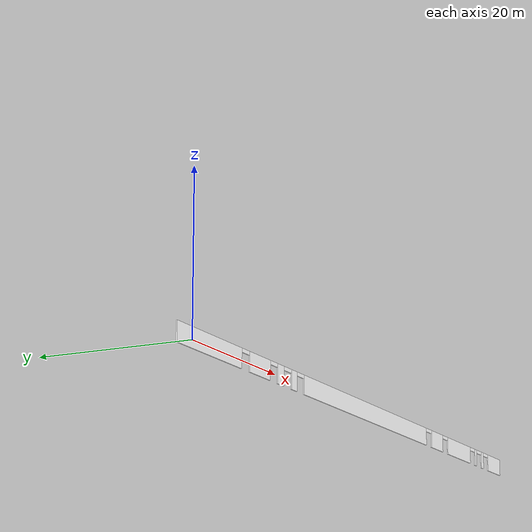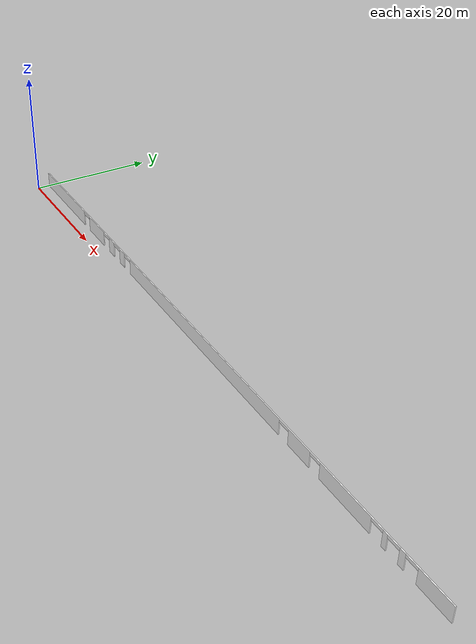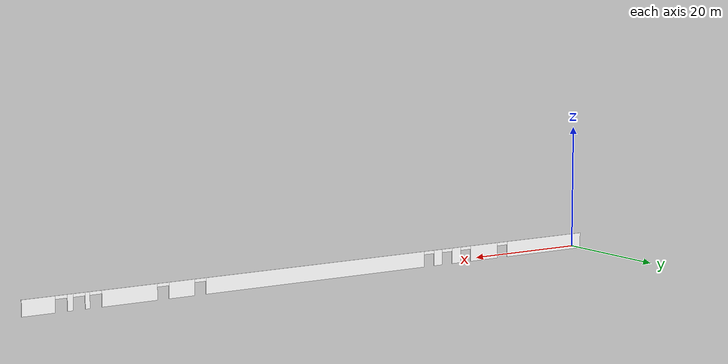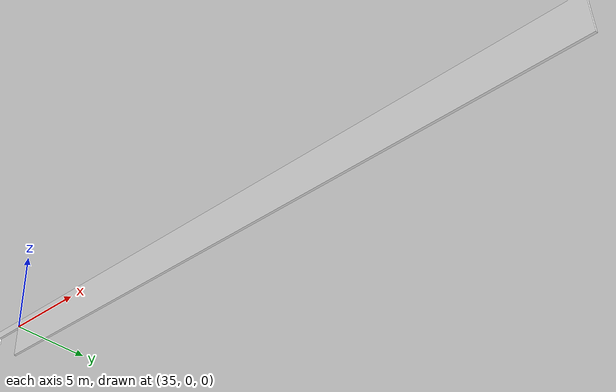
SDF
<?xml version='1.0'?>
    <sdf version='1.6'>
  <model name='wall_with_door'>
    <pose frame=''>50  2  0 0 -0 0</pose>
    <link name='Wall_2'>
      <pose frame=''>0 0 0 0 -0 0</pose>
 <visual name='Wall_2_Visual_0'>
 <pose frame=''> -42.3645  0 1.25 0 -0 0</pose>
 <geometry>
 <box>
 <size> 15.271  0.15 2.5</size>
 </box>
 </geometry>
 <material>
 <script>
          <uri>model://floor/materials/scripts</uri>
         <uri>model://floor/materials/textures</uri>
 <name>floor</name>
 </script>
 <ambient>1 1 1 1</ambient>
 </material>
 <meta>
 <layer>0</layer>
 </meta>
 </visual>
 <collision name='Wall_2_Collision_0'>
 <geometry>
 <box>
  <size> 15.271  0.15 2.5</size>
 </box>
 </geometry>
 <pose frame=''> -42.3645  0 1.25 0 -0 0</pose>
 </collision>
<visual name='Wall_2_Visual_1'>
 <pose frame=''> -30.0405  0 1.25 0 -0 0</pose>
 <geometry>
 <box>
 <size> 5.377  0.15 2.5</size>
 </box>
 </geometry>
 <material>
 <script>
          <uri>model://floor/materials/scripts</uri>
         <uri>model://floor/materials/textures</uri>
 <name>floor</name>
 </script>
 <ambient>1 1 1 1</ambient>
 </material>
 <meta>
 <layer>0</layer>
 </meta>
 </visual>
 <collision name='Wall_2_Collision_1'>
 <geometry>
 <box>
  <size> 5.377  0.15 2.5</size>
 </box>
 </geometry>
 <pose frame=''> -30.0405  0 1.25 0 -0 0</pose>
 </collision>
<visual name='Wall_2_Visual_2'>
 <pose frame=''> -24.472  0 1.25 0 -0 0</pose>
 <geometry>
 <box>
 <size> 1.76  0.15 2.5</size>
 </box>
 </geometry>
 <material>
 <script>
          <uri>model://floor/materials/scripts</uri>
         <uri>model://floor/materials/textures</uri>
 <name>floor</name>
 </script>
 <ambient>1 1 1 1</ambient>
 </material>
 <meta>
 <layer>0</layer>
 </meta>
 </visual>
 <collision name='Wall_2_Collision_2'>
 <geometry>
 <box>
  <size> 1.76  0.15 2.5</size>
 </box>
 </geometry>
 <pose frame=''> -24.472  0 1.25 0 -0 0</pose>
 </collision>
<visual name='Wall_2_Visual_3'>
 <pose frame=''> -20.8175  0 1.25 0 -0 0</pose>
 <geometry>
 <box>
 <size> 1.549  0.15 2.5</size>
 </box>
 </geometry>
 <material>
 <script>
          <uri>model://floor/materials/scripts</uri>
         <uri>model://floor/materials/textures</uri>
 <name>floor</name>

 </script>
 <ambient>1 1 1 1</ambient>
 </material>
 <meta>
 <layer>0</layer>
 </meta>
 </visual>
 <collision name='Wall_2_Collision_3'>
 <geometry>
 <box>
  <size> 1.549  0.15 2.5</size>
 </box>
 </geometry>
 <pose frame=''> -20.8175  0 1.25 0 -0 0</pose>
 </collision>
<visual name='Wall_2_Visual_4'>
 <pose frame=''> 2.1425  0 1.25 0 -0 0</pose>
 <geometry>
 <box>
 <size> 40.371  0.15 2.5</size>
 </box>
 </geometry>
 <material>
 <script>
          <uri>model://floor/materials/scripts</uri>
         <uri>model://floor/materials/textures</uri>
 <name>floor</name>
 </script>
 <ambient>1 1 1 1</ambient>
 </material>
 <meta>
 <layer>0</layer>
 </meta>
 </visual>
 <collision name='Wall_2_Collision_4'>
 <geometry>
 <box>
  <size> 40.371  0.15 2.5</size>
 </box>
 </geometry>
 <pose frame=''> 2.1425  0 1.25 0 -0 0</pose>
 </collision>
<visual name='Wall_2_Visual_5'>
 <pose frame=''> 26.519  0 1.25 0 -0 0</pose>
 <geometry>
 <box>
 <size> 4.382  0.15 2.5</size>
 </box>
 </geometry>
 <material>
 <script>
          <uri>model://floor/materials/scripts</uri>
         <uri>model://floor/materials/textures</uri>
 <name>floor</name>
 </script>
 <ambient>1 1 1 1</ambient>
 </material>
 <meta>
 <layer>0</layer>
 </meta>
 </visual>
 <collision name='Wall_2_Collision_5'>
 <geometry>
 <box>
  <size> 4.382  0.15 2.5</size>
 </box>
 </geometry>
 <pose frame=''> 26.519  0 1.25 0 -0 0</pose>
 </collision>
<visual name='Wall_2_Visual_6'>
 <pose frame=''> 35.369  0 1.25 0 -0 0</pose>
 <geometry>
 <box>
 <size> 9.318  0.15 2.5</size>
 </box>
 </geometry>
 <material>
 <script>
          <uri>model://floor/materials/scripts</uri>
         <uri>model://floor/materials/textures</uri>
 <name>floor</name>
 </script>
 <ambient>1 1 1 1</ambient>
 </material>
 <meta>
 <layer>0</layer>
 </meta>
 </visual>
 <collision name='Wall_2_Collision_6'>
 <geometry>
 <box>
  <size> 9.318  0.15 2.5</size>
 </box>
 </geometry>
 <pose frame=''> 35.369  0 1.25 0 -0 0</pose>
 </collision>
<visual name='Wall_2_Visual_7'>
 <pose frame=''> 42.4015  0 1.25 0 -0 0</pose>
 <geometry>
 <box>
 <size> 0.747  0.15 2.5</size>
 </box>
 </geometry>
 <material>
 <script>
          <uri>model://floor/materials/scripts</uri>
         <uri>model://floor/materials/textures</uri>
 <name>floor</name>

 </script>
 <ambient>1 1 1 1</ambient>
 </material>
 <meta>
 <layer>0</layer>
 </meta>
 </visual>
 <collision name='Wall_2_Collision_7'>
 <geometry>
 <box>
  <size> 0.747  0.15 2.5</size>
 </box>
 </geometry>
 <pose frame=''> 42.4015  0 1.25 0 -0 0</pose>
 </collision>
<visual name='Wall_2_Visual_8'>
 <pose frame=''> 45.239  0 1.25 0 -0 0</pose>
 <geometry>
 <box>
 <size> 0.928  0.15 2.5</size>
 </box>
 </geometry>
 <material>
 <script>
         <uri>model://floor/materials/scripts</uri>
         <uri>model://floor/materials/textures</uri>
 <name>floor</name>
 </script>
 <ambient>1 1 1 1</ambient>
 </material>
 <meta>
 <layer>0</layer>
 </meta>
 </visual>
 <collision name='Wall_2_Collision_8'>
 <geometry>
 <box>
  <size> 0.928  0.15 2.5</size>
 </box>
 </geometry>
 <pose frame=''> 45.239  0 1.25 0 -0 0</pose>
 </collision>
<visual name='Wall_2_Visual_9'>
 <pose frame=''> 50.4005  0 1.25 0 -0 0</pose>
 <geometry>
 <box>
 <size> 5.395  0.15 2.5</size>
 </box>
 </geometry>
 <material>
 <script>
          <uri>model://floor/materials/scripts</uri>
         <uri>model://floor/materials/textures</uri>
 <name>floor</name>
 </script>
 <ambient>1 1 1 1</ambient>
 </material>
 <meta>
 <layer>0</layer>
 </meta>
 </visual>
 <collision name='Wall_2_Collision_9'>
 <geometry>
 <box>
  <size> 5.395  0.15 2.5</size>
 </box>
 </geometry>
 <pose frame=''> 50.4005  0 1.25 0 -0 0</pose>
 </collision>
 <visual name='Door_2_Visual_0'>
 <pose frame=''> -33.729  0 2.25 0 -0 0</pose>
 <geometry>
 <box>
 <size>2 0.15 0.5</size>
 </box>
 </geometry>
 <material>
 <script>
          <uri>model://floor/materials/scripts</uri>
         <uri>model://floor/materials/textures</uri>
 <name>floor</name>
  </script>
 <ambient>1 1 1 1</ambient>
 </material>
 <meta>
 <layer>0</layer>
 </meta>
 </visual>
 <collision name='Door_2_Collision_0'>
 <geometry>
 <box>
 <size>2 0.15 0.5</size>
 </box>
 </geometry>
 <pose frame=''> -33.729  0 2.25 0 -0 0</pose>
 </collision>
<visual name='Door_2_Visual_1'>
 <pose frame=''> -26.352  0 2.25 0 -0 0</pose>
 <geometry>
 <box>
 <size>2 0.15 0.5</size>
 </box>
 </geometry>
 <material>
 <script>
          <uri>model://floor/materials/scripts</uri>
         <uri>model://floor/materials/textures</uri>
 <name>floor</name>
 </script>
 <ambient>1 1 1 1</ambient>
 </material>
 <meta>
 <layer>0</layer>
 </meta>
 </visual>
 <collision name='Door_2_Collision_1'>
 <geometry>
 <box>
 <size>2 0.15 0.5</size>
 </box>
 </geometry>
 <pose frame=''> -26.352  0 2.25 0 -0 0</pose>
 </collision>
<visual name='Door_2_Visual_2'>
 <pose frame=''> -22.592  0 2.25 0 -0 0</pose>
 <geometry>
 <box>
 <size>2 0.15 0.5</size>
 </box>
 </geometry>
 <material>
 <script>
          <uri>model://floor/materials/scripts</uri>
         <uri>model://floor/materials/textures</uri>
 <name>floor</name>
 </script>
 <ambient>1 1 1 1</ambient>
 </material>
 <meta>
 <layer>0</layer>
 </meta>
 </visual>
 <collision name='Door_2_Collision_2'>
 <geometry>
 <box>
 <size>2 0.15 0.5</size>
 </box>
 </geometry>
 <pose frame=''> -22.592  0 2.25 0 -0 0</pose>
 </collision>
<visual name='Door_2_Visual_3'>
 <pose frame=''> -19.043  0 2.25 0 -0 0</pose>
 <geometry>
 <box>
 <size>2 0.15 0.5</size>
 </box>
 </geometry>
 <material>
 <script>
         <uri>model://floor/materials/scripts</uri>
         <uri>model://floor/materials/textures</uri>
 <name>floor</name>

 </script>
 <ambient>1 1 1 1</ambient>
 </material>
 <meta>
 <layer>0</layer>
 </meta>
 </visual>
 <collision name='Door_2_Collision_3'>
 <geometry>
 <box>
 <size>2 0.15 0.5</size>
 </box>
 </geometry>
 <pose frame=''> -19.043  0 2.25 0 -0 0</pose>
 </collision>
<visual name='Door_2_Visual_4'>
 <pose frame=''> 23.328  0 2.25 0 -0 0</pose>
 <geometry>
 <box>
 <size>2 0.15 0.5</size>
 </box>
 </geometry>
 <material>
 <script>
         <uri>model://floor/materials/scripts</uri>
         <uri>model://floor/materials/textures</uri>
 <name>floor</name>
 </script>
 <ambient>1 1 1 1</ambient>
 </material>
 <meta>
 <layer>0</layer>
 </meta>
 </visual>
 <collision name='Door_2_Collision_4'>
 <geometry>
 <box>
 <size>2 0.15 0.5</size>
 </box>
 </geometry>
 <pose frame=''> 23.328  0 2.25 0 -0 0</pose>
 </collision>
<visual name='Door_2_Visual_5'>
 <pose frame=''> 29.71  0 2.25 0 -0 0</pose>
 <geometry>
 <box>
 <size>2 0.15 0.5</size>
 </box>
 </geometry>
 <material>
 <script>
	 <uri>model://floor/materials/scripts</uri>
  <uri>model://floor/materials/textures</uri>
 <name>floor</name>

 </script>
 <ambient>1 1 1 1</ambient>
 </material>
 <meta>
 <layer>0</layer>
 </meta>
 </visual>
 <collision name='Door_2_Collision_5'>
 <geometry>
 <box>
 <size>2 0.15 0.5</size>
 </box>
 </geometry>
 <pose frame=''> 29.71  0 2.25 0 -0 0</pose>
 </collision>
<visual name='Door_2_Visual_6'>
 <pose frame=''> 41.028  0 2.25 0 -0 0</pose>
 <geometry>
 <box>
 <size>2 0.15 0.5</size>
 </box>
 </geometry>
 <material>
 <script>
          <uri>model://floor/materials/scripts</uri>
         <uri>model://floor/materials/textures</uri>
 <name>floor</name>
 </script>
 <ambient>1 1 1 1</ambient>
 </material>
 <meta>
 <layer>0</layer>
 </meta>
 </visual>
 <collision name='Door_2_Collision_6'>
 <geometry>
 <box>
 <size>2 0.15 0.5</size>
 </box>
 </geometry>
 <pose frame=''> 41.028  0 2.25 0 -0 0</pose>
 </collision>
<visual name='Door_2_Visual_7'>
 <pose frame=''> 43.775  0 2.25 0 -0 0</pose>
 <geometry>
 <box>
 <size>2 0.15 0.5</size>
 </box>
 </geometry>
 <material>
	 <script>
	<uri>model://floor/materials/scripts</uri>
  <uri>model://floor/materials/textures</uri>
 <name>floor</name>

 </script>
 <ambient>1 1 1 1</ambient>
 </material>
 <meta>
 <layer>0</layer>
 </meta>
 </visual>
 <collision name='Door_2_Collision_7'>
 <geometry>
 <box>
 <size>2 0.15 0.5</size>
 </box>
 </geometry>
 <pose frame=''> 43.775  0 2.25 0 -0 0</pose>
 </collision>
<visual name='Door_2_Visual_8'>
 <pose frame=''> 46.703  0 2.25 0 -0 0</pose>
 <geometry>
 <box>
 <size>2 0.15 0.5</size>
 </box>
 </geometry>
 <material>
 <script>
          <uri>model://floor/materials/scripts</uri>
         <uri>model://floor/materials/textures</uri>
 <name>floor</name>
 </script>
 <ambient>1 1 1 1</ambient>
 </material>
 <meta>
 <layer>0</layer>
 </meta>
 </visual>
 <collision name='Door_2_Collision_8'>
 <geometry>
 <box>
 <size>2 0.15 0.5</size>
 </box>
 </geometry>
 <pose frame=''> 46.703  0 2.25 0 -0 0</pose>
 </collision>
 </link>
 <static>1</static>
 </model>
 </sdf>
